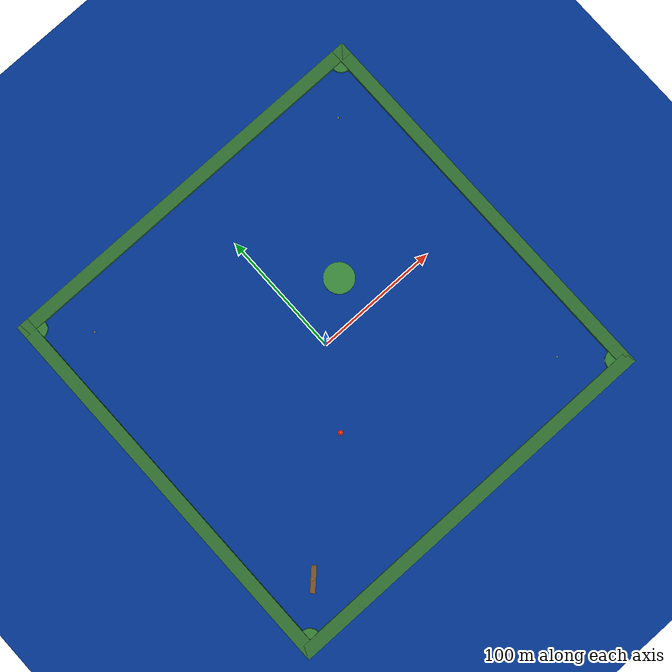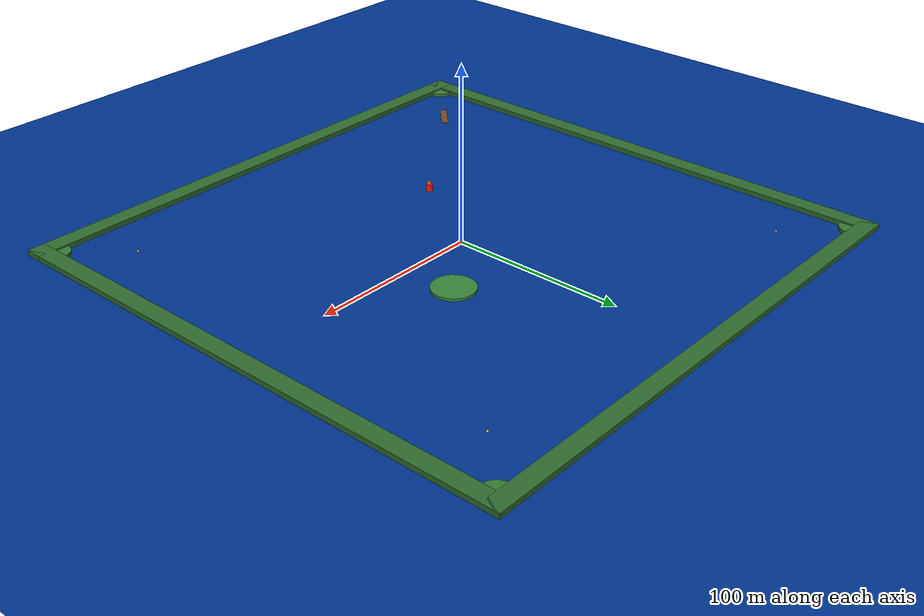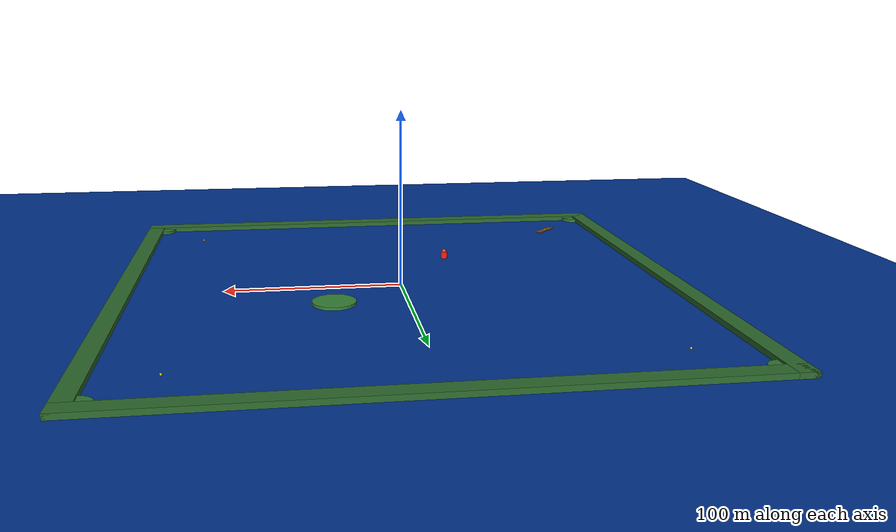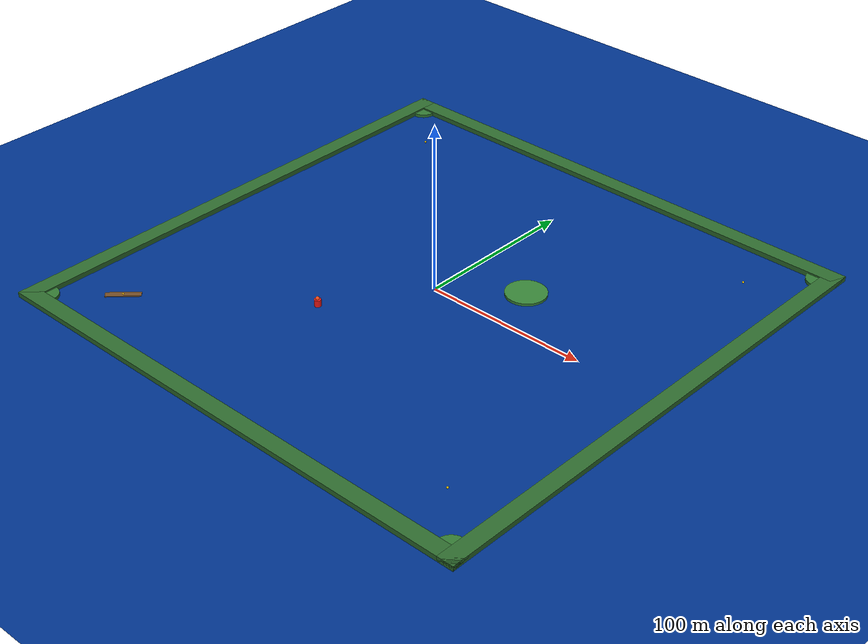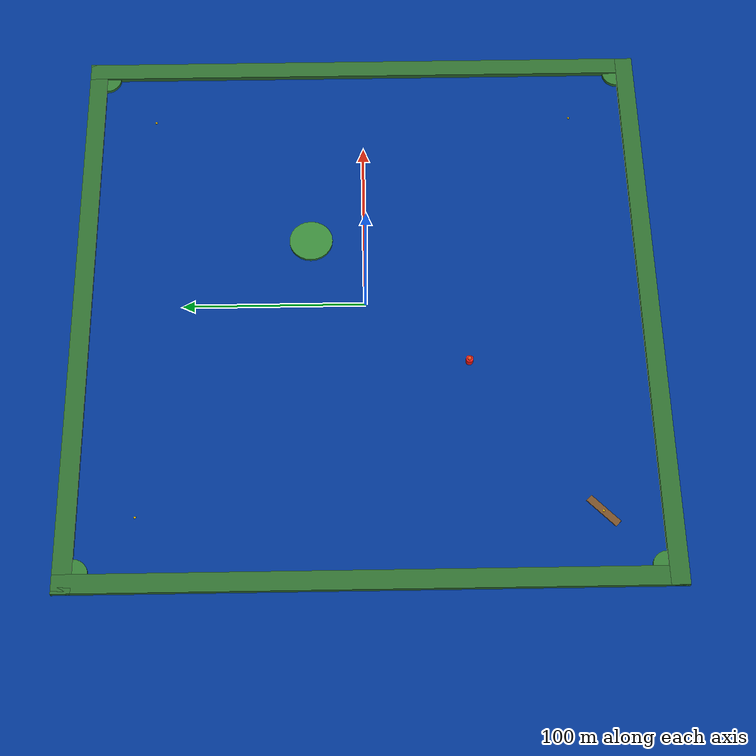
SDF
<sdf version="1.10">
 <world name="niot_world">
  <spherical_coordinates>
   <surface_model>EARTH_WGS84</surface_model>
   <latitude_deg>13.0827</latitude_deg>
   <longitude_deg>80.2707</longitude_deg>
   <elevation>0</elevation>
   <heading_deg>0</heading_deg>
  </spherical_coordinates>
  <physics name="1ms" type="ode">
   <max_step_size>0.001</max_step_size>
   <real_time_factor>1.0</real_time_factor>
  </physics>
  <scene>
   <ambient>0.55 0.60 0.65 1</ambient>
   <background>0.52 0.75 0.95 1</background>
   <sky><clouds><speed>0.4</speed></clouds></sky>
  </scene>
  <plugin filename="gz-sim-physics-system" name="gz::sim::systems::Physics"/>
  <plugin filename="gz-sim-user-commands-system" name="gz::sim::systems::UserCommands"/>
  <plugin filename="gz-sim-scene-broadcaster-system" name="gz::sim::systems::SceneBroadcaster"/>
  <plugin filename="gz-sim-buoyancy-system" name="gz::sim::systems::Buoyancy">
   <graded_buoyancy>
    <default_density>1000</default_density>
    <density_change><above_depth>0</above_depth><density>1</density></density_change>
   </graded_buoyancy>
  </plugin>
  <plugin filename="gz-sim-imu-system" name="gz::sim::systems::Imu"/>
  <plugin filename="gz-sim-magnetometer-system" name="gz::sim::systems::Magnetometer"/>
  <plugin filename="gz-sim-navsat-system" name="gz::sim::systems::NavSat"/>
  <light type="directional" name="sun">
   <pose>0 0 120 0 0 0</pose>
   <diffuse>1 1 1 1</diffuse>
   <specular>0.5 0.5 0.5 1</specular>
   <direction>-0.3 0.2 -1</direction>
  </light>
  <model name="water_surface">
   <static>true</static>
   <link name="link">
    <visual name="water_visual">
     <geometry><plane><normal>0 0 1</normal><size>300 300</size></plane></geometry>
     <material>
      <ambient>0.0 0.12 0.45 0.85</ambient>
      <diffuse>0.0 0.20 0.55 0.85</diffuse>
      <specular>0.9 0.9 0.9 1</specular>
     </material>
    </visual>
   </link>
  </model>
  <model name="north_shore">
   <static>true</static>
   <pose>0 155 1.5 0 0 0</pose>
   <link name="link">
    <collision name="collision"><geometry><box><size>320 10 3</size></box></geometry></collision>
    <visual name="visual">
     <geometry><box><size>320 10 3</size></box></geometry>
     <material><ambient>0.18 0.42 0.18 1</ambient><diffuse>0.18 0.42 0.18 1</diffuse></material>
    </visual>
   </link>
  </model>
  <model name="south_shore">
   <static>true</static>
   <pose>0 -155 1.5 0 0 0</pose>
   <link name="link">
    <collision name="collision"><geometry><box><size>320 10 3</size></box></geometry></collision>
    <visual name="visual">
     <geometry><box><size>320 10 3</size></box></geometry>
     <material><ambient>0.18 0.42 0.18 1</ambient><diffuse>0.18 0.42 0.18 1</diffuse></material>
    </visual>
   </link>
  </model>
  <model name="east_shore">
   <static>true</static>
   <pose>155 0 1.5 0 0 0</pose>
   <link name="link">
    <collision name="collision"><geometry><box><size>10 320 3</size></box></geometry></collision>
    <visual name="visual">
     <geometry><box><size>10 320 3</size></box></geometry>
     <material><ambient>0.18 0.42 0.18 1</ambient><diffuse>0.18 0.42 0.18 1</diffuse></material>
    </visual>
   </link>
  </model>
  <model name="west_shore">
   <static>true</static>
   <pose>-155 0 1.5 0 0 0</pose>
   <link name="link">
    <collision name="collision"><geometry><box><size>10 320 3</size></box></geometry></collision>
    <visual name="visual">
     <geometry><box><size>10 320 3</size></box></geometry>
     <material><ambient>0.18 0.42 0.18 1</ambient><diffuse>0.18 0.42 0.18 1</diffuse></material>
    </visual>
   </link>
  </model>
  <model name="northwest_corner">
   <static>true</static>
   <pose>-150 150 1 0 0 0</pose>
   <link name="link">
    <visual name="visual">
     <geometry><cylinder><radius>8</radius><length>2</length></cylinder></geometry>
     <material><ambient>0.20 0.48 0.20 1</ambient><diffuse>0.20 0.48 0.20 1</diffuse></material>
    </visual>
   </link>
  </model>
  <model name="northeast_corner">
   <static>true</static>
   <pose>150 150 1 0 0 0</pose>
   <link name="link">
    <visual name="visual">
     <geometry><cylinder><radius>8</radius><length>2</length></cylinder></geometry>
     <material><ambient>0.20 0.48 0.20 1</ambient><diffuse>0.20 0.48 0.20 1</diffuse></material>
    </visual>
   </link>
  </model>
  <model name="southeast_corner">
   <static>true</static>
   <pose>150 -150 1 0 0 0</pose>
   <link name="link">
    <visual name="visual">
     <geometry><cylinder><radius>8</radius><length>2</length></cylinder></geometry>
     <material><ambient>0.20 0.48 0.20 1</ambient><diffuse>0.20 0.48 0.20 1</diffuse></material>
    </visual>
   </link>
  </model>
  <model name="southwest_corner">
   <static>true</static>
   <pose>-150 -150 1 0 0 0</pose>
   <link name="link">
    <visual name="visual">
     <geometry><cylinder><radius>8</radius><length>2</length></cylinder></geometry>
     <material><ambient>0.20 0.48 0.20 1</ambient><diffuse>0.20 0.48 0.20 1</diffuse></material>
    </visual>
   </link>
  </model>
  <model name="island">
   <static>true</static>
   <pose>40 30 0.8 0 0 0</pose>
   <link name="link">
    <collision name="collision">
     <geometry><cylinder><radius>12</radius><length>1.6</length></cylinder></geometry>
    </collision>
    <visual name="visual">
     <geometry><cylinder><radius>12</radius><length>1.6</length></cylinder></geometry>
     <material><ambient>0.22 0.52 0.22 1</ambient><diffuse>0.22 0.52 0.22 1</diffuse></material>
    </visual>
   </link>
  </model>
  <model name="dock">
   <static>true</static>
   <pose>-120 -120 0.3 0 0 0.785</pose>
   <link name="link">
    <visual name="visual">
     <geometry><box><size>20 4 0.6</size></box></geometry>
     <material><ambient>0.45 0.30 0.15 1</ambient><diffuse>0.45 0.30 0.15 1</diffuse></material>
    </visual>
   </link>
  </model>
  <model name="buoy_1">
   <static>true</static>
   <pose>-120 -120 0.5 0 0 0</pose>
   <link name="link">
    <visual name="visual">
     <geometry><sphere><radius>0.6</radius></sphere></geometry>
     <material><ambient>1 0.8 0 1</ambient><diffuse>1 0.8 0 1</diffuse></material>
    </visual>
   </link>
  </model>
  <model name="buoy_2">
   <static>true</static>
   <pose>120 -120 0.5 0 0 0</pose>
   <link name="link">
    <visual name="visual">
     <geometry><sphere><radius>0.6</radius></sphere></geometry>
     <material><ambient>1 0.8 0 1</ambient><diffuse>1 0.8 0 1</diffuse></material>
    </visual>
   </link>
  </model>
  <model name="buoy_3">
   <static>true</static>
   <pose>120 120 0.5 0 0 0</pose>
   <link name="link">
    <visual name="visual">
     <geometry><sphere><radius>0.6</radius></sphere></geometry>
     <material><ambient>1 0.8 0 1</ambient><diffuse>1 0.8 0 1</diffuse></material>
    </visual>
   </link>
  </model>
  <model name="buoy_4">
   <static>true</static>
   <pose>-120 120 0.5 0 0 0</pose>
   <link name="link">
    <visual name="visual">
     <geometry><sphere><radius>0.6</radius></sphere></geometry>
     <material><ambient>1 0.8 0 1</ambient><diffuse>1 0.8 0 1</diffuse></material>
    </visual>
   </link>
  </model>
  <model name="magnetic_target">
   <static>true</static>
   <pose>-35 -55 2 0 0 0</pose>
   <link name="marker">
    <visual name="visual">
     <geometry><cylinder><radius>2.0</radius><length>4.0</length></cylinder></geometry>
     <material>
      <ambient>1 0.1 0.1 1</ambient>
      <diffuse>1 0.1 0.1 1</diffuse>
      <emissive>0.4 0 0 1</emissive>
     </material>
    </visual>
    <visual name="cap">
     <pose>0 0 2.5 0 0 0</pose>
     <geometry><sphere><radius>1.2</radius></sphere></geometry>
     <material>
      <ambient>1 0.3 0.1 1</ambient>
      <diffuse>1 0.3 0.1 1</diffuse>
      <emissive>0.5 0.1 0 1</emissive>
     </material>
    </visual>
   </link>
  </model>
 </world>
</sdf>
